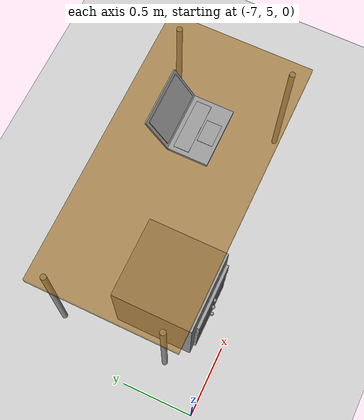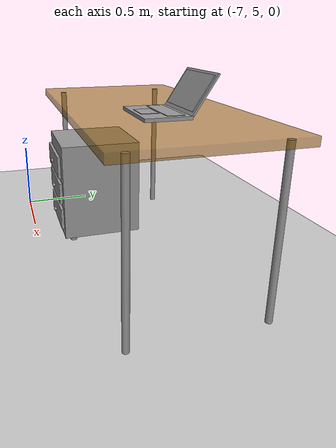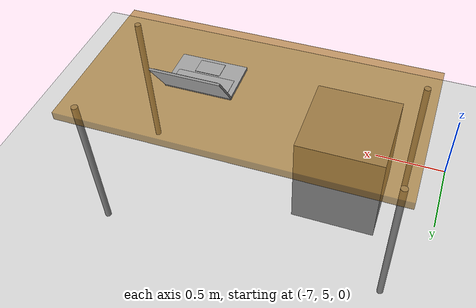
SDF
<sdf version="1.7">
 <world name="default">
  <model name="ground_plane">
   <static>1</static>
   <link name="link">
    <collision name="collision">
     <geometry><plane><normal>0 0 1</normal><size>100 100</size></plane></geometry>
     <surface>
      <contact><collide_bitmask>65535</collide_bitmask></contact>
      <friction><ode><mu>100</mu><mu2>50</mu2></ode></friction>
     </surface>
    </collision>
    <visual name="visual">
     <cast_shadows>0</cast_shadows>
     <geometry><plane><normal>0 0 1</normal><size>100 100</size></plane></geometry>
     <material>
      <script><uri>file://media/materials/scripts/gazebo.material</uri><name>Gazebo/Grey</name></script>
     </material>
    </visual>
   </link>
  </model>
  <model name="my_table_v2">
   <link name="link">
    <inertial>
     <mass>1</mass>
     <inertia>
      <ixx>0.166667</ixx>
      <ixy>0</ixy>
      <ixz>0</ixz>
      <iyy>0.166667</iyy>
      <iyz>0</iyz>
      <izz>0.166667</izz>
     </inertia>
    </inertial>
    <visual name="visual">
     <geometry><box><size>2 1 0.05</size></box></geometry>
     <material>
      <script><name>Gazebo/Grey</name><uri>file://media/materials/scripts/gazebo.material</uri></script>
      <shader type="pixel"><normal_map>__default__</normal_map></shader>
      <ambient>0.6 0.39 0.055 0.6</ambient>
      <diffuse>0.65 0.65 0.65 1</diffuse>
      <specular>0.01 0.01 0.01 1</specular>
      <emissive>0.1 0.1 0.1 1</emissive>
     </material>
     <pose>0 0 1 0 -0 0</pose>
    </visual>
    <collision name="collision">
     <pose>0 0 1 0 -0 0</pose>
     <geometry><box><size>2 1 0.05</size></box></geometry>
     <surface>
      <friction>
       <ode><mu>1</mu><mu2>1</mu2><fdir1>0 0 0</fdir1><slip1>0</slip1><slip2>0</slip2></ode>
       <torsional>
        <coefficient>1</coefficient>
        <patch_radius>0</patch_radius>
        <surface_radius>0</surface_radius>
        <use_patch_radius>1</use_patch_radius>
        <ode><slip>0</slip></ode>
       </torsional>
      </friction>
      <bounce><restitution_coefficient>0</restitution_coefficient><threshold>1e+06</threshold></bounce>
      <contact>
       <collide_without_contact>0</collide_without_contact>
       <collide_without_contact_bitmask>1</collide_without_contact_bitmask>
       <collide_bitmask>1</collide_bitmask>
       <ode>
        <soft_cfm>0</soft_cfm>
        <soft_erp>0.2</soft_erp>
        <kp>1e+13</kp>
        <kd>1</kd>
        <max_vel>0.01</max_vel>
        <min_depth>0</min_depth>
       </ode>
       <bullet>
        <split_impulse>1</split_impulse>
        <split_impulse_penetration_threshold>-0.01</split_impulse_penetration_threshold>
        <soft_cfm>0</soft_cfm>
        <soft_erp>0.2</soft_erp>
        <kp>1e+13</kp>
        <kd>1</kd>
       </bullet>
      </contact>
     </surface>
    </collision>
   </link>
   <link name="link_1">
    <inertial>
     <mass>1</mass>
     <inertia><ixx>0.145833</ixx><ixy>0</ixy><ixz>0</ixz><iyy>0.145833</iyy><iyz>0</iyz><izz>0.125</izz></inertia>
    </inertial>
    <pose>0.928374 -0.393621 0.5 0 -0 0</pose>
    <visual name="visual">
     <geometry><cylinder><radius>0.02</radius><length>1</length></cylinder></geometry>
     <material>
      <lighting>1</lighting>
      <script><uri>file://media/materials/scripts/gazebo.material</uri><name>Gazebo/Grey</name></script>
      <shader type="pixel"><normal_map>__default__</normal_map></shader>
      <ambient>0.5 0.5 0.5 1</ambient>
      <diffuse>0.8 0.8 0.8 1</diffuse>
      <specular>0.01 0.01 0.01 1</specular>
      <emissive>0 0 0 1</emissive>
     </material>
    </visual>
    <collision name="collision">
     <geometry><cylinder><radius>0.02</radius><length>0.75</length></cylinder></geometry>
     <surface>
      <friction>
       <ode><mu>1</mu><mu2>1</mu2><fdir1>0 0 0</fdir1><slip1>0</slip1><slip2>0</slip2></ode>
       <torsional>
        <coefficient>1</coefficient>
        <patch_radius>0</patch_radius>
        <surface_radius>0</surface_radius>
        <use_patch_radius>1</use_patch_radius>
        <ode><slip>0</slip></ode>
       </torsional>
      </friction>
      <bounce><restitution_coefficient>0</restitution_coefficient><threshold>1e+06</threshold></bounce>
      <contact>
       <collide_without_contact>0</collide_without_contact>
       <collide_without_contact_bitmask>1</collide_without_contact_bitmask>
       <collide_bitmask>1</collide_bitmask>
       <ode>
        <soft_cfm>0</soft_cfm>
        <soft_erp>0.2</soft_erp>
        <kp>1e+13</kp>
        <kd>1</kd>
        <max_vel>0.01</max_vel>
        <min_depth>0</min_depth>
       </ode>
       <bullet>
        <split_impulse>1</split_impulse>
        <split_impulse_penetration_threshold>-0.01</split_impulse_penetration_threshold>
        <soft_cfm>0</soft_cfm>
        <soft_erp>0.2</soft_erp>
        <kp>1e+13</kp>
        <kd>1</kd>
       </bullet>
      </contact>
     </surface>
    </collision>
   </link>
   <link name="link_1_clone_1">
    <inertial>
     <mass>1</mass>
     <inertia><ixx>0.145833</ixx><ixy>0</ixy><ixz>0</ixz><iyy>0.145833</iyy><iyz>0</iyz><izz>0.125</izz></inertia>
    </inertial>
    <pose>-0.927679 -0.365385 0.5 0 -0 0</pose>
    <visual name="visual">
     <geometry><cylinder><radius>0.02</radius><length>1</length></cylinder></geometry>
     <material>
      <lighting>1</lighting>
      <script><uri>file://media/materials/scripts/gazebo.material</uri><name>Gazebo/Grey</name></script>
      <shader type="pixel"><normal_map>__default__</normal_map></shader>
      <ambient>0.5 0.5 0.5 1</ambient>
      <diffuse>0.8 0.8 0.8 1</diffuse>
      <specular>0.01 0.01 0.01 1</specular>
      <emissive>0 0 0 1</emissive>
     </material>
    </visual>
    <collision name="collision">
     <geometry><cylinder><radius>0.02</radius><length>0.75</length></cylinder></geometry>
     <surface>
      <friction>
       <ode><mu>1</mu><mu2>1</mu2><fdir1>0 0 0</fdir1><slip1>0</slip1><slip2>0</slip2></ode>
       <torsional>
        <coefficient>1</coefficient>
        <patch_radius>0</patch_radius>
        <surface_radius>0</surface_radius>
        <use_patch_radius>1</use_patch_radius>
        <ode><slip>0</slip></ode>
       </torsional>
      </friction>
      <bounce><restitution_coefficient>0</restitution_coefficient><threshold>1e+06</threshold></bounce>
      <contact>
       <collide_without_contact>0</collide_without_contact>
       <collide_without_contact_bitmask>1</collide_without_contact_bitmask>
       <collide_bitmask>1</collide_bitmask>
       <ode>
        <soft_cfm>0</soft_cfm>
        <soft_erp>0.2</soft_erp>
        <kp>1e+13</kp>
        <kd>1</kd>
        <max_vel>0.01</max_vel>
        <min_depth>0</min_depth>
       </ode>
       <bullet>
        <split_impulse>1</split_impulse>
        <split_impulse_penetration_threshold>-0.01</split_impulse_penetration_threshold>
        <soft_cfm>0</soft_cfm>
        <soft_erp>0.2</soft_erp>
        <kp>1e+13</kp>
        <kd>1</kd>
       </bullet>
      </contact>
     </surface>
    </collision>
   </link>
   <link name="link_1_clone_1_clone">
    <inertial>
     <mass>1</mass>
     <inertia><ixx>0.145833</ixx><ixy>0</ixy><ixz>0</ixz><iyy>0.145833</iyy><iyz>0</iyz><izz>0.125</izz></inertia>
    </inertial>
    <pose>-0.933002 0.405987 0.5 0 -0 0</pose>
    <visual name="visual">
     <geometry><cylinder><radius>0.02</radius><length>1</length></cylinder></geometry>
     <material>
      <lighting>1</lighting>
      <script><uri>file://media/materials/scripts/gazebo.material</uri><name>Gazebo/Grey</name></script>
      <shader type="pixel"><normal_map>__default__</normal_map></shader>
      <ambient>0.5 0.5 0.5 1</ambient>
      <diffuse>0.8 0.8 0.8 1</diffuse>
      <specular>0.01 0.01 0.01 1</specular>
      <emissive>0 0 0 1</emissive>
     </material>
    </visual>
    <collision name="collision">
     <geometry><cylinder><radius>0.02</radius><length>0.75</length></cylinder></geometry>
     <surface>
      <friction>
       <ode><mu>1</mu><mu2>1</mu2><fdir1>0 0 0</fdir1><slip1>0</slip1><slip2>0</slip2></ode>
       <torsional>
        <coefficient>1</coefficient>
        <patch_radius>0</patch_radius>
        <surface_radius>0</surface_radius>
        <use_patch_radius>1</use_patch_radius>
        <ode><slip>0</slip></ode>
       </torsional>
      </friction>
      <bounce><restitution_coefficient>0</restitution_coefficient><threshold>1e+06</threshold></bounce>
      <contact>
       <collide_without_contact>0</collide_without_contact>
       <collide_without_contact_bitmask>1</collide_without_contact_bitmask>
       <collide_bitmask>1</collide_bitmask>
       <ode>
        <soft_cfm>0</soft_cfm>
        <soft_erp>0.2</soft_erp>
        <kp>1e+13</kp>
        <kd>1</kd>
        <max_vel>0.01</max_vel>
        <min_depth>0</min_depth>
       </ode>
       <bullet>
        <split_impulse>1</split_impulse>
        <split_impulse_penetration_threshold>-0.01</split_impulse_penetration_threshold>
        <soft_cfm>0</soft_cfm>
        <soft_erp>0.2</soft_erp>
        <kp>1e+13</kp>
        <kd>1</kd>
       </bullet>
      </contact>
     </surface>
    </collision>
   </link>
   <link name="link_1_clone_1_clone_0">
    <inertial>
     <mass>1</mass>
     <inertia><ixx>0.145833</ixx><ixy>0</ixy><ixz>0</ixz><iyy>0.145833</iyy><iyz>0</iyz><izz>0.125</izz></inertia>
    </inertial>
    <pose>0.924345 0.40229 0.5 0 -0 0</pose>
    <visual name="visual">
     <geometry><cylinder><radius>0.02</radius><length>1</length></cylinder></geometry>
     <material>
      <lighting>1</lighting>
      <script><uri>file://media/materials/scripts/gazebo.material</uri><name>Gazebo/Grey</name></script>
      <shader type="pixel"><normal_map>__default__</normal_map></shader>
      <ambient>0.5 0.5 0.5 1</ambient>
      <diffuse>0.8 0.8 0.8 1</diffuse>
      <specular>0.01 0.01 0.01 1</specular>
      <emissive>0 0 0 1</emissive>
     </material>
    </visual>
    <collision name="collision">
     <geometry><cylinder><radius>0.02</radius><length>0.75</length></cylinder></geometry>
     <surface>
      <friction>
       <ode><mu>1</mu><mu2>1</mu2><fdir1>0 0 0</fdir1><slip1>0</slip1><slip2>0</slip2></ode>
       <torsional>
        <coefficient>1</coefficient>
        <patch_radius>0</patch_radius>
        <surface_radius>0</surface_radius>
        <use_patch_radius>1</use_patch_radius>
        <ode><slip>0</slip></ode>
       </torsional>
      </friction>
      <bounce><restitution_coefficient>0</restitution_coefficient><threshold>1e+06</threshold></bounce>
      <contact>
       <collide_without_contact>0</collide_without_contact>
       <collide_without_contact_bitmask>1</collide_without_contact_bitmask>
       <collide_bitmask>1</collide_bitmask>
       <ode>
        <soft_cfm>0</soft_cfm>
        <soft_erp>0.2</soft_erp>
        <kp>1e+13</kp>
        <kd>1</kd>
        <max_vel>0.01</max_vel>
        <min_depth>0</min_depth>
       </ode>
       <bullet>
        <split_impulse>1</split_impulse>
        <split_impulse_penetration_threshold>-0.01</split_impulse_penetration_threshold>
        <soft_cfm>0</soft_cfm>
        <soft_erp>0.2</soft_erp>
        <kp>1e+13</kp>
        <kd>1</kd>
       </bullet>
      </contact>
     </surface>
    </collision>
   </link>
   <static>1</static>
   <pose>-5.82161 5.67835 0 0 -0 0</pose>
  </model>
  <model name="my_drawer_v2">
   <link name="link">
    <inertial>
     <mass>1</mass>
     <inertia>
      <ixx>0.166667</ixx>
      <ixy>0</ixy>
      <ixz>0</ixz>
      <iyy>0.166667</iyy>
      <iyz>0</iyz>
      <izz>0.166667</izz>
     </inertia>
    </inertial>
    <pose>0 0 0.116299 0 -0 0</pose>
    <visual name="visual">
     <geometry><box><size>0.55 0.55 0.675</size></box></geometry>
     <material>
      <script><name>Gazebo/Grey</name><uri>file://media/materials/scripts/gazebo.material</uri></script>
      <shader type="pixel"><normal_map>__default__</normal_map></shader>
      <ambient>0.9 0.9 0.9 1</ambient>
      <diffuse>0.9 0.9 0.9 1</diffuse>
      <specular>0.01 0.01 0.01 1</specular>
      <emissive>0 0 0 1</emissive>
     </material>
     <pose>0 0 0.27 0 -0 0</pose>
    </visual>
    <collision name="collision">
     <pose>0 0 0.27 0 -0 0</pose>
     <geometry><box><size>0.55 0.55 0.675</size></box></geometry>
     <surface>
      <friction>
       <ode><mu>1</mu><mu2>1</mu2><fdir1>0 0 0</fdir1><slip1>0</slip1><slip2>0</slip2></ode>
       <torsional>
        <coefficient>1</coefficient>
        <patch_radius>0</patch_radius>
        <surface_radius>0</surface_radius>
        <use_patch_radius>1</use_patch_radius>
        <ode><slip>0</slip></ode>
       </torsional>
      </friction>
      <bounce><restitution_coefficient>0</restitution_coefficient><threshold>1e+06</threshold></bounce>
      <contact>
       <collide_without_contact>0</collide_without_contact>
       <collide_without_contact_bitmask>1</collide_without_contact_bitmask>
       <collide_bitmask>1</collide_bitmask>
       <ode>
        <soft_cfm>0</soft_cfm>
        <soft_erp>0.2</soft_erp>
        <kp>1e+13</kp>
        <kd>1</kd>
        <max_vel>0.01</max_vel>
        <min_depth>0</min_depth>
       </ode>
       <bullet>
        <split_impulse>1</split_impulse>
        <split_impulse_penetration_threshold>-0.01</split_impulse_penetration_threshold>
        <soft_cfm>0</soft_cfm>
        <soft_erp>0.2</soft_erp>
        <kp>1e+13</kp>
        <kd>1</kd>
       </bullet>
      </contact>
     </surface>
    </collision>
   </link>
   <link name="link_0">
    <inertial>
     <mass>1</mass>
     <inertia><ixx>0.145833</ixx><ixy>0</ixy><ixz>0</ixz><iyy>0.145833</iyy><iyz>0</iyz><izz>0.125</izz></inertia>
    </inertial>
    <pose>0.2095 -0.203821 0.302524 0 -0 0</pose>
    <visual name="visual">
     <pose>0 0 -0.275 0 -0 0</pose>
     <geometry><cylinder><radius>0.025</radius><length>0.05</length></cylinder></geometry>
     <material>
      <lighting>1</lighting>
      <script><uri>file://media/materials/scripts/gazebo.material</uri><name>Gazebo/Grey</name></script>
      <shader type="pixel"><normal_map>__default__</normal_map></shader>
      <ambient>0.7 0.7 0.7 1</ambient>
      <diffuse>0.7 0.7 0.7 1</diffuse>
      <specular>0.01 0.01 0.01 1</specular>
      <emissive>0 0 0 1</emissive>
     </material>
    </visual>
    <collision name="collision">
     <pose>0 0 -0.275 0 -0 0</pose>
     <geometry><cylinder><radius>0.025</radius><length>0.05</length></cylinder></geometry>
     <surface>
      <friction>
       <ode><mu>1</mu><mu2>1</mu2><fdir1>0 0 0</fdir1><slip1>0</slip1><slip2>0</slip2></ode>
       <torsional>
        <coefficient>1</coefficient>
        <patch_radius>0</patch_radius>
        <surface_radius>0</surface_radius>
        <use_patch_radius>1</use_patch_radius>
        <ode><slip>0</slip></ode>
       </torsional>
      </friction>
      <bounce><restitution_coefficient>0</restitution_coefficient><threshold>1e+06</threshold></bounce>
      <contact>
       <collide_without_contact>0</collide_without_contact>
       <collide_without_contact_bitmask>1</collide_without_contact_bitmask>
       <collide_bitmask>1</collide_bitmask>
       <ode>
        <soft_cfm>0</soft_cfm>
        <soft_erp>0.2</soft_erp>
        <kp>1e+13</kp>
        <kd>1</kd>
        <max_vel>0.01</max_vel>
        <min_depth>0</min_depth>
       </ode>
       <bullet>
        <split_impulse>1</split_impulse>
        <split_impulse_penetration_threshold>-0.01</split_impulse_penetration_threshold>
        <soft_cfm>0</soft_cfm>
        <soft_erp>0.2</soft_erp>
        <kp>1e+13</kp>
        <kd>1</kd>
       </bullet>
      </contact>
     </surface>
    </collision>
   </link>
   <link name="link_0_0_clone">
    <inertial>
     <mass>1</mass>
     <inertia>
      <ixx>0.166667</ixx>
      <ixy>0</ixy>
      <ixz>0</ixz>
      <iyy>0.166667</iyy>
      <iyz>0</iyz>
      <izz>0.166667</izz>
     </inertia>
    </inertial>
    <pose>-0.003378 0.283932 0.180993 0 -0 0</pose>
    <visual name="visual">
     <geometry><box><size>0.45 0.02 0.15</size></box></geometry>
     <material>
      <lighting>1</lighting>
      <script><uri>file://media/materials/scripts/gazebo.material</uri><name>Gazebo/Grey</name></script>
      <shader type="pixel"><normal_map>__default__</normal_map></shader>
      <ambient>0.9 0.9 0.9 1</ambient>
      <diffuse>0.9 0.9 0.9 1</diffuse>
      <specular>0.01 0.01 0.01 1</specular>
      <emissive>0 0 0 1</emissive>
     </material>
    </visual>
    <collision name="collision">
     <geometry><box><size>0.45 0.02 0.15</size></box></geometry>
     <surface>
      <friction>
       <ode><mu>1</mu><mu2>1</mu2><fdir1>0 0 0</fdir1><slip1>0</slip1><slip2>0</slip2></ode>
       <torsional>
        <coefficient>1</coefficient>
        <patch_radius>0</patch_radius>
        <surface_radius>0</surface_radius>
        <use_patch_radius>1</use_patch_radius>
        <ode><slip>0</slip></ode>
       </torsional>
      </friction>
      <bounce><restitution_coefficient>0</restitution_coefficient><threshold>1e+06</threshold></bounce>
      <contact>
       <collide_without_contact>0</collide_without_contact>
       <collide_without_contact_bitmask>1</collide_without_contact_bitmask>
       <collide_bitmask>1</collide_bitmask>
       <ode>
        <soft_cfm>0</soft_cfm>
        <soft_erp>0.2</soft_erp>
        <kp>1e+13</kp>
        <kd>1</kd>
        <max_vel>0.01</max_vel>
        <min_depth>0</min_depth>
       </ode>
       <bullet>
        <split_impulse>1</split_impulse>
        <split_impulse_penetration_threshold>-0.01</split_impulse_penetration_threshold>
        <soft_cfm>0</soft_cfm>
        <soft_erp>0.2</soft_erp>
        <kp>1e+13</kp>
        <kd>1</kd>
       </bullet>
      </contact>
     </surface>
    </collision>
   </link>
   <link name="link_0_0_clone_clone">
    <inertial>
     <mass>1</mass>
     <inertia>
      <ixx>0.166667</ixx>
      <ixy>0</ixy>
      <ixz>0</ixz>
      <iyy>0.166667</iyy>
      <iyz>0</iyz>
      <izz>0.166667</izz>
     </inertia>
    </inertial>
    <pose>-0.004239 0.28732 0.377607 0 -0 0</pose>
    <visual name="visual">
     <geometry><box><size>0.45 0.02 0.15</size></box></geometry>
     <material>
      <lighting>1</lighting>
      <script><uri>file://media/materials/scripts/gazebo.material</uri><name>Gazebo/Grey</name></script>
      <shader type="pixel"><normal_map>__default__</normal_map></shader>
      <ambient>0.9 0.9 0.9 1</ambient>
      <diffuse>0.9 0.9 0.9 1</diffuse>
      <specular>0.01 0.01 0.01 1</specular>
      <emissive>0 0 0 1</emissive>
     </material>
    </visual>
    <collision name="collision">
     <geometry><box><size>0.45 0.02 0.15</size></box></geometry>
     <surface>
      <friction>
       <ode><mu>1</mu><mu2>1</mu2><fdir1>0 0 0</fdir1><slip1>0</slip1><slip2>0</slip2></ode>
       <torsional>
        <coefficient>1</coefficient>
        <patch_radius>0</patch_radius>
        <surface_radius>0</surface_radius>
        <use_patch_radius>1</use_patch_radius>
        <ode><slip>0</slip></ode>
       </torsional>
      </friction>
      <bounce><restitution_coefficient>0</restitution_coefficient><threshold>1e+06</threshold></bounce>
      <contact>
       <collide_without_contact>0</collide_without_contact>
       <collide_without_contact_bitmask>1</collide_without_contact_bitmask>
       <collide_bitmask>1</collide_bitmask>
       <ode>
        <soft_cfm>0</soft_cfm>
        <soft_erp>0.2</soft_erp>
        <kp>1e+13</kp>
        <kd>1</kd>
        <max_vel>0.01</max_vel>
        <min_depth>0</min_depth>
       </ode>
       <bullet>
        <split_impulse>1</split_impulse>
        <split_impulse_penetration_threshold>-0.01</split_impulse_penetration_threshold>
        <soft_cfm>0</soft_cfm>
        <soft_erp>0.2</soft_erp>
        <kp>1e+13</kp>
        <kd>1</kd>
       </bullet>
      </contact>
     </surface>
    </collision>
   </link>
   <link name="link_0_0_clone_clone_clone">
    <inertial>
     <mass>1</mass>
     <inertia>
      <ixx>0.166667</ixx>
      <ixy>0</ixy>
      <ixz>0</ixz>
      <iyy>0.166667</iyy>
      <iyz>0</iyz>
      <izz>0.166667</izz>
     </inertia>
    </inertial>
    <pose>-0.005805 0.292346 0.569265 0 0 -3.13872</pose>
    <visual name="visual">
     <geometry><box><size>0.45 0.02 0.15</size></box></geometry>
     <material>
      <lighting>1</lighting>
      <script><uri>file://media/materials/scripts/gazebo.material</uri><name>Gazebo/Grey</name></script>
      <shader type="pixel"><normal_map>__default__</normal_map></shader>
      <ambient>0.9 0.9 0.9 1</ambient>
      <diffuse>0.9 0.9 0.9 1</diffuse>
      <specular>0.01 0.01 0.01 1</specular>
      <emissive>0 0 0 1</emissive>
     </material>
    </visual>
    <collision name="collision">
     <geometry><box><size>0.45 0.02 0.15</size></box></geometry>
     <surface>
      <friction>
       <ode><mu>1</mu><mu2>1</mu2><fdir1>0 0 0</fdir1><slip1>0</slip1><slip2>0</slip2></ode>
       <torsional>
        <coefficient>1</coefficient>
        <patch_radius>0</patch_radius>
        <surface_radius>0</surface_radius>
        <use_patch_radius>1</use_patch_radius>
        <ode><slip>0</slip></ode>
       </torsional>
      </friction>
      <bounce><restitution_coefficient>0</restitution_coefficient><threshold>1e+06</threshold></bounce>
      <contact>
       <collide_without_contact>0</collide_without_contact>
       <collide_without_contact_bitmask>1</collide_without_contact_bitmask>
       <collide_bitmask>1</collide_bitmask>
       <ode>
        <soft_cfm>0</soft_cfm>
        <soft_erp>0.2</soft_erp>
        <kp>1e+13</kp>
        <kd>1</kd>
        <max_vel>0.01</max_vel>
        <min_depth>0</min_depth>
       </ode>
       <bullet>
        <split_impulse>1</split_impulse>
        <split_impulse_penetration_threshold>-0.01</split_impulse_penetration_threshold>
        <soft_cfm>0</soft_cfm>
        <soft_erp>0.2</soft_erp>
        <kp>1e+13</kp>
        <kd>1</kd>
       </bullet>
      </contact>
     </surface>
    </collision>
   </link>
   <link name="link_0_clone">
    <inertial>
     <mass>1</mass>
     <inertia><ixx>0.145833</ixx><ixy>0</ixy><ixz>0</ixz><iyy>0.145833</iyy><iyz>0</iyz><izz>0.125</izz></inertia>
    </inertial>
    <pose>-0.20661 -0.201979 0.303229 0 -0 0</pose>
    <visual name="visual">
     <pose>0 0 -0.275 0 -0 0</pose>
     <geometry><cylinder><radius>0.025</radius><length>0.05</length></cylinder></geometry>
     <material>
      <lighting>1</lighting>
      <script><uri>file://media/materials/scripts/gazebo.material</uri><name>Gazebo/Grey</name></script>
      <shader type="pixel"><normal_map>__default__</normal_map></shader>
      <ambient>0.8 0.8 0.8 1</ambient>
      <diffuse>0.8 0.8 0.8 1</diffuse>
      <specular>0.01 0.01 0.01 1</specular>
      <emissive>0 0 0 1</emissive>
     </material>
    </visual>
    <collision name="collision">
     <pose>0 0 -0.275 0 -0 0</pose>
     <geometry><cylinder><radius>0.025</radius><length>0.05</length></cylinder></geometry>
     <surface>
      <friction>
       <ode><mu>1</mu><mu2>1</mu2><fdir1>0 0 0</fdir1><slip1>0</slip1><slip2>0</slip2></ode>
       <torsional>
        <coefficient>1</coefficient>
        <patch_radius>0</patch_radius>
        <surface_radius>0</surface_radius>
        <use_patch_radius>1</use_patch_radius>
        <ode><slip>0</slip></ode>
       </torsional>
      </friction>
      <bounce><restitution_coefficient>0</restitution_coefficient><threshold>1e+06</threshold></bounce>
      <contact>
       <collide_without_contact>0</collide_without_contact>
       <collide_without_contact_bitmask>1</collide_without_contact_bitmask>
       <collide_bitmask>1</collide_bitmask>
       <ode>
        <soft_cfm>0</soft_cfm>
        <soft_erp>0.2</soft_erp>
        <kp>1e+13</kp>
        <kd>1</kd>
        <max_vel>0.01</max_vel>
        <min_depth>0</min_depth>
       </ode>
       <bullet>
        <split_impulse>1</split_impulse>
        <split_impulse_penetration_threshold>-0.01</split_impulse_penetration_threshold>
        <soft_cfm>0</soft_cfm>
        <soft_erp>0.2</soft_erp>
        <kp>1e+13</kp>
        <kd>1</kd>
       </bullet>
      </contact>
     </surface>
    </collision>
   </link>
   <link name="link_0_clone_0">
    <inertial>
     <mass>1</mass>
     <inertia><ixx>0.145833</ixx><ixy>0</ixy><ixz>0</ixz><iyy>0.145833</iyy><iyz>0</iyz><izz>0.125</izz></inertia>
    </inertial>
    <pose>0.205481 0.211972 0.302524 0 -0 0</pose>
    <visual name="visual">
     <pose>0 0 -0.275 0 -0 0</pose>
     <geometry><cylinder><radius>0.025</radius><length>0.05</length></cylinder></geometry>
     <material>
      <lighting>1</lighting>
      <script><uri>file://media/materials/scripts/gazebo.material</uri><name>Gazebo/Grey</name></script>
      <shader type="pixel"><normal_map>__default__</normal_map></shader>
      <ambient>0.7 0.7 0.7 1</ambient>
      <diffuse>0.7 0.7 0.7 1</diffuse>
      <specular>0.01 0.01 0.01 1</specular>
      <emissive>0 0 0 1</emissive>
     </material>
    </visual>
    <collision name="collision">
     <pose>0 0 -0.275 0 -0 0</pose>
     <geometry><cylinder><radius>0.025</radius><length>0.05</length></cylinder></geometry>
     <surface>
      <friction>
       <ode><mu>1</mu><mu2>1</mu2><fdir1>0 0 0</fdir1><slip1>0</slip1><slip2>0</slip2></ode>
       <torsional>
        <coefficient>1</coefficient>
        <patch_radius>0</patch_radius>
        <surface_radius>0</surface_radius>
        <use_patch_radius>1</use_patch_radius>
        <ode><slip>0</slip></ode>
       </torsional>
      </friction>
      <bounce><restitution_coefficient>0</restitution_coefficient><threshold>1e+06</threshold></bounce>
      <contact>
       <collide_without_contact>0</collide_without_contact>
       <collide_without_contact_bitmask>1</collide_without_contact_bitmask>
       <collide_bitmask>1</collide_bitmask>
       <ode>
        <soft_cfm>0</soft_cfm>
        <soft_erp>0.2</soft_erp>
        <kp>1e+13</kp>
        <kd>1</kd>
        <max_vel>0.01</max_vel>
        <min_depth>0</min_depth>
       </ode>
       <bullet>
        <split_impulse>1</split_impulse>
        <split_impulse_penetration_threshold>-0.01</split_impulse_penetration_threshold>
        <soft_cfm>0</soft_cfm>
        <soft_erp>0.2</soft_erp>
        <kp>1e+13</kp>
        <kd>1</kd>
       </bullet>
      </contact>
     </surface>
    </collision>
   </link>
   <link name="link_0_clone_0_clone">
    <inertial>
     <mass>1</mass>
     <inertia><ixx>0.145833</ixx><ixy>0</ixy><ixz>0</ixz><iyy>0.145833</iyy><iyz>0</iyz><izz>0.125</izz></inertia>
    </inertial>
    <pose>-0.197514 0.204937 0.302524 0 -0 0</pose>
    <visual name="visual">
     <pose>0 0 -0.275 0 -0 0</pose>
     <geometry><cylinder><radius>0.025</radius><length>0.05</length></cylinder></geometry>
     <material>
      <lighting>1</lighting>
      <script><uri>file://media/materials/scripts/gazebo.material</uri><name>Gazebo/Grey</name></script>
      <shader type="pixel"><normal_map>__default__</normal_map></shader>
      <ambient>0.7 0.7 0.7 1</ambient>
      <diffuse>0.7 0.7 0.7 1</diffuse>
      <specular>0.01 0.01 0.01 1</specular>
      <emissive>0 0 0 1</emissive>
     </material>
    </visual>
    <collision name="collision">
     <pose>0 0 -0.275 0 -0 0</pose>
     <geometry><cylinder><radius>0.025</radius><length>0.05</length></cylinder></geometry>
     <surface>
      <friction>
       <ode><mu>1</mu><mu2>1</mu2><fdir1>0 0 0</fdir1><slip1>0</slip1><slip2>0</slip2></ode>
       <torsional>
        <coefficient>1</coefficient>
        <patch_radius>0</patch_radius>
        <surface_radius>0</surface_radius>
        <use_patch_radius>1</use_patch_radius>
        <ode><slip>0</slip></ode>
       </torsional>
      </friction>
      <bounce><restitution_coefficient>0</restitution_coefficient><threshold>1e+06</threshold></bounce>
      <contact>
       <collide_without_contact>0</collide_without_contact>
       <collide_without_contact_bitmask>1</collide_without_contact_bitmask>
       <collide_bitmask>1</collide_bitmask>
       <ode>
        <soft_cfm>0</soft_cfm>
        <soft_erp>0.2</soft_erp>
        <kp>1e+13</kp>
        <kd>1</kd>
        <max_vel>0.01</max_vel>
        <min_depth>0</min_depth>
       </ode>
       <bullet>
        <split_impulse>1</split_impulse>
        <split_impulse_penetration_threshold>-0.01</split_impulse_penetration_threshold>
        <soft_cfm>0</soft_cfm>
        <soft_erp>0.2</soft_erp>
        <kp>1e+13</kp>
        <kd>1</kd>
       </bullet>
      </contact>
     </surface>
    </collision>
   </link>
   <link name="link_1">
    <inertial>
     <mass>1</mass>
     <inertia><ixx>0.1</ixx><ixy>0</ixy><ixz>0</ixz><iyy>0.1</iyy><iyz>0</iyz><izz>0.1</izz></inertia>
    </inertial>
    <pose>-0.007427 0.306598 0.372378 0 -0 0</pose>
    <visual name="visual">
     <geometry><sphere><radius>0.013</radius></sphere></geometry>
     <material>
      <lighting>1</lighting>
      <script><uri>file://media/materials/scripts/gazebo.material</uri><name>Gazebo/Grey</name></script>
      <shader type="pixel"><normal_map>__default__</normal_map></shader>
      <ambient>0.2 0.2 0.2 1</ambient>
      <diffuse>0.3 0.3 0.3 1</diffuse>
      <specular>0.01 0.01 0.01 1</specular>
      <emissive>0 0 0 1</emissive>
     </material>
    </visual>
    <collision name="collision">
     <geometry><sphere><radius>0.013</radius></sphere></geometry>
     <surface>
      <friction>
       <ode><mu>1</mu><mu2>1</mu2><fdir1>0 0 0</fdir1><slip1>0</slip1><slip2>0</slip2></ode>
       <torsional>
        <coefficient>1</coefficient>
        <patch_radius>0</patch_radius>
        <surface_radius>0</surface_radius>
        <use_patch_radius>1</use_patch_radius>
        <ode><slip>0</slip></ode>
       </torsional>
      </friction>
      <bounce><restitution_coefficient>0</restitution_coefficient><threshold>1e+06</threshold></bounce>
      <contact>
       <collide_without_contact>0</collide_without_contact>
       <collide_without_contact_bitmask>1</collide_without_contact_bitmask>
       <collide_bitmask>1</collide_bitmask>
       <ode>
        <soft_cfm>0</soft_cfm>
        <soft_erp>0.2</soft_erp>
        <kp>1e+13</kp>
        <kd>1</kd>
        <max_vel>0.01</max_vel>
        <min_depth>0</min_depth>
       </ode>
       <bullet>
        <split_impulse>1</split_impulse>
        <split_impulse_penetration_threshold>-0.01</split_impulse_penetration_threshold>
        <soft_cfm>0</soft_cfm>
        <soft_erp>0.2</soft_erp>
        <kp>1e+13</kp>
        <kd>1</kd>
       </bullet>
      </contact>
     </surface>
    </collision>
   </link>
   <link name="link_1_clone">
    <inertial>
     <mass>1</mass>
     <inertia><ixx>0.1</ixx><ixy>0</ixy><ixz>0</ixz><iyy>0.1</iyy><iyz>0</iyz><izz>0.1</izz></inertia>
    </inertial>
    <pose>-0.007411 0.306159 0.179254 0 -0 0</pose>
    <visual name="visual">
     <geometry><sphere><radius>0.013</radius></sphere></geometry>
     <material>
      <lighting>1</lighting>
      <script><uri>file://media/materials/scripts/gazebo.material</uri><name>Gazebo/Grey</name></script>
      <shader type="pixel"><normal_map>__default__</normal_map></shader>
      <ambient>0.2 0.2 0.2 1</ambient>
      <diffuse>0.3 0.3 0.3 1</diffuse>
      <specular>0.01 0.01 0.01 1</specular>
      <emissive>0 0 0 1</emissive>
     </material>
    </visual>
    <collision name="collision">
     <geometry><sphere><radius>0.013</radius></sphere></geometry>
     <surface>
      <friction>
       <ode><mu>1</mu><mu2>1</mu2><fdir1>0 0 0</fdir1><slip1>0</slip1><slip2>0</slip2></ode>
       <torsional>
        <coefficient>1</coefficient>
        <patch_radius>0</patch_radius>
        <surface_radius>0</surface_radius>
        <use_patch_radius>1</use_patch_radius>
        <ode><slip>0</slip></ode>
       </torsional>
      </friction>
      <bounce><restitution_coefficient>0</restitution_coefficient><threshold>1e+06</threshold></bounce>
      <contact>
       <collide_without_contact>0</collide_without_contact>
       <collide_without_contact_bitmask>1</collide_without_contact_bitmask>
       <collide_bitmask>1</collide_bitmask>
       <ode>
        <soft_cfm>0</soft_cfm>
        <soft_erp>0.2</soft_erp>
        <kp>1e+13</kp>
        <kd>1</kd>
        <max_vel>0.01</max_vel>
        <min_depth>0</min_depth>
       </ode>
       <bullet>
        <split_impulse>1</split_impulse>
        <split_impulse_penetration_threshold>-0.01</split_impulse_penetration_threshold>
        <soft_cfm>0</soft_cfm>
        <soft_erp>0.2</soft_erp>
        <kp>1e+13</kp>
        <kd>1</kd>
       </bullet>
      </contact>
     </surface>
    </collision>
   </link>
   <link name="link_1_clone_clone">
    <inertial>
     <mass>1</mass>
     <inertia><ixx>0.1</ixx><ixy>0</ixy><ixz>0</ixz><iyy>0.1</iyy><iyz>0</iyz><izz>0.1</izz></inertia>
    </inertial>
    <pose>-0.006412 0.30676 0.563852 0 0 -3.13872</pose>
    <visual name="visual">
     <geometry><sphere><radius>0.013</radius></sphere></geometry>
     <material>
      <lighting>1</lighting>
      <script><uri>file://media/materials/scripts/gazebo.material</uri><name>Gazebo/Grey</name></script>
      <shader type="pixel"><normal_map>__default__</normal_map></shader>
      <ambient>0.2 0.2 0.2 1</ambient>
      <diffuse>0.3 0.3 0.3 1</diffuse>
      <specular>0.01 0.01 0.01 1</specular>
      <emissive>0 0 0 1</emissive>
     </material>
    </visual>
    <collision name="collision">
     <geometry><sphere><radius>0.013</radius></sphere></geometry>
     <surface>
      <friction>
       <ode><mu>1</mu><mu2>1</mu2><fdir1>0 0 0</fdir1><slip1>0</slip1><slip2>0</slip2></ode>
       <torsional>
        <coefficient>1</coefficient>
        <patch_radius>0</patch_radius>
        <surface_radius>0</surface_radius>
        <use_patch_radius>1</use_patch_radius>
        <ode><slip>0</slip></ode>
       </torsional>
      </friction>
      <bounce><restitution_coefficient>0</restitution_coefficient><threshold>1e+06</threshold></bounce>
      <contact>
       <collide_without_contact>0</collide_without_contact>
       <collide_without_contact_bitmask>1</collide_without_contact_bitmask>
       <collide_bitmask>1</collide_bitmask>
       <ode>
        <soft_cfm>0</soft_cfm>
        <soft_erp>0.2</soft_erp>
        <kp>1e+13</kp>
        <kd>1</kd>
        <max_vel>0.01</max_vel>
        <min_depth>0</min_depth>
       </ode>
       <bullet>
        <split_impulse>1</split_impulse>
        <split_impulse_penetration_threshold>-0.01</split_impulse_penetration_threshold>
        <soft_cfm>0</soft_cfm>
        <soft_erp>0.2</soft_erp>
        <kp>1e+13</kp>
        <kd>1</kd>
       </bullet>
      </contact>
     </surface>
    </collision>
   </link>
   <static>1</static>
   <pose>-6.35314 5.4569 0 0 -0 3.14149</pose>
  </model>
  <model name="my_pc">
   <link name="link">
    <inertial>
     <mass>1</mass>
     <inertia>
      <ixx>0.166667</ixx>
      <ixy>0</ixy>
      <ixz>0</ixz>
      <iyy>0.166667</iyy>
      <iyz>0</iyz>
      <izz>0.166667</izz>
     </inertia>
    </inertial>
    <gravity>0</gravity>
    <visual name="visual">
     <geometry><box><size>0.4 0.27 0.02</size></box></geometry>
     <material>
      <script><name>Gazebo/Grey</name><uri>file://media/materials/scripts/gazebo.material</uri></script>
      <shader type="pixel"><normal_map>__default__</normal_map></shader>
      <ambient>0.6 0.6 0.6 0</ambient>
      <diffuse>0.6 0.6 0.6 1</diffuse>
      <specular>0.01 0.01 0.01 1</specular>
      <emissive>0 0 0 1</emissive>
     </material>
     <pose>0 0 1.035 0 -0 0</pose>
    </visual>
    <collision name="collision">
     <pose>0 0 1.035 0 -0 0</pose>
     <geometry><box><size>0.4 0.27 0.02</size></box></geometry>
     <surface>
      <friction>
       <ode><mu>1</mu><mu2>1</mu2><fdir1>0 0 0</fdir1><slip1>0</slip1><slip2>0</slip2></ode>
       <torsional>
        <coefficient>1</coefficient>
        <patch_radius>0</patch_radius>
        <surface_radius>0</surface_radius>
        <use_patch_radius>1</use_patch_radius>
        <ode><slip>0</slip></ode>
       </torsional>
      </friction>
      <bounce><restitution_coefficient>0</restitution_coefficient><threshold>1e+06</threshold></bounce>
      <contact>
       <collide_without_contact>0</collide_without_contact>
       <collide_without_contact_bitmask>1</collide_without_contact_bitmask>
       <collide_bitmask>1</collide_bitmask>
       <ode>
        <soft_cfm>0</soft_cfm>
        <soft_erp>0.2</soft_erp>
        <kp>1e+13</kp>
        <kd>1</kd>
        <max_vel>0.01</max_vel>
        <min_depth>0</min_depth>
       </ode>
       <bullet>
        <split_impulse>1</split_impulse>
        <split_impulse_penetration_threshold>-0.01</split_impulse_penetration_threshold>
        <soft_cfm>0</soft_cfm>
        <soft_erp>0.2</soft_erp>
        <kp>1e+13</kp>
        <kd>1</kd>
       </bullet>
      </contact>
     </surface>
    </collision>
   </link>
   <link name="link_clone">
    <inertial>
     <mass>1</mass>
     <inertia>
      <ixx>0.166667</ixx>
      <ixy>0</ixy>
      <ixz>0</ixz>
      <iyy>0.166667</iyy>
      <iyz>0</iyz>
      <izz>0.166667</izz>
     </inertia>
    </inertial>
    <pose>-0.00057 0.199611 0.109573 0 -0 0</pose>
    <visual name="visual">
     <geometry><box><size>0.4 0.27 0.012</size></box></geometry>
     <material>
      <script><name>Gazebo/Grey</name><uri>file://media/materials/scripts/gazebo.material</uri></script>
      <shader type="pixel"><normal_map>__default__</normal_map></shader>
      <ambient>0.6 0.6 0.6 0</ambient>
      <diffuse>0.6 0.6 0.6 1</diffuse>
      <specular>0.01 0.01 0.01 1</specular>
      <emissive>0 0 0 1</emissive>
     </material>
     <pose>0 0 1.035 1 -0 0</pose>
    </visual>
    <collision name="collision">
     <pose>0 0 1.035 1 -0 0</pose>
     <geometry><box><size>0.4 0.27 0.012</size></box></geometry>
     <surface>
      <friction>
       <ode><mu>1</mu><mu2>1</mu2><fdir1>0 0 0</fdir1><slip1>0</slip1><slip2>0</slip2></ode>
       <torsional>
        <coefficient>1</coefficient>
        <patch_radius>0</patch_radius>
        <surface_radius>0</surface_radius>
        <use_patch_radius>1</use_patch_radius>
        <ode><slip>0</slip></ode>
       </torsional>
      </friction>
      <bounce><restitution_coefficient>0</restitution_coefficient><threshold>1e+06</threshold></bounce>
      <contact>
       <collide_without_contact>0</collide_without_contact>
       <collide_without_contact_bitmask>1</collide_without_contact_bitmask>
       <collide_bitmask>1</collide_bitmask>
       <ode>
        <soft_cfm>0</soft_cfm>
        <soft_erp>0.2</soft_erp>
        <kp>1e+13</kp>
        <kd>1</kd>
        <max_vel>0.01</max_vel>
        <min_depth>0</min_depth>
       </ode>
       <bullet>
        <split_impulse>1</split_impulse>
        <split_impulse_penetration_threshold>-0.01</split_impulse_penetration_threshold>
        <soft_cfm>0</soft_cfm>
        <soft_erp>0.2</soft_erp>
        <kp>1e+13</kp>
        <kd>1</kd>
       </bullet>
      </contact>
     </surface>
    </collision>
   </link>
   <link name="link_clone_0">
    <inertial>
     <mass>1</mass>
     <inertia>
      <ixx>0.166667</ixx>
      <ixy>0</ixy>
      <ixz>0</ixz>
      <iyy>0.166667</iyy>
      <iyz>0</iyz>
      <izz>0.166667</izz>
     </inertia>
    </inertial>
    <pose>0.000615 -0.061904 0.007701 0 -0 0</pose>
    <visual name="visual">
     <geometry><box><size>0.15 0.1 0.01</size></box></geometry>
     <material>
      <script><name>Gazebo/Grey</name><uri>file://media/materials/scripts/gazebo.material</uri></script>
      <shader type="pixel"><normal_map>__default__</normal_map></shader>
      <ambient>0.8 0.8 0.8 0</ambient>
      <diffuse>0.8 0.8 0.8 1</diffuse>
      <specular>0.01 0.01 0.01 1</specular>
      <emissive>0 0 0 1</emissive>
     </material>
     <pose>0 0 1.035 0 -0 0</pose>
    </visual>
    <collision name="collision">
     <pose>0 0 1.035 0 -0 0</pose>
     <geometry><box><size>0.15 0.1 0.01</size></box></geometry>
     <surface>
      <friction>
       <ode><mu>1</mu><mu2>1</mu2><fdir1>0 0 0</fdir1><slip1>0</slip1><slip2>0</slip2></ode>
       <torsional>
        <coefficient>1</coefficient>
        <patch_radius>0</patch_radius>
        <surface_radius>0</surface_radius>
        <use_patch_radius>1</use_patch_radius>
        <ode><slip>0</slip></ode>
       </torsional>
      </friction>
      <bounce><restitution_coefficient>0</restitution_coefficient><threshold>1e+06</threshold></bounce>
      <contact>
       <collide_without_contact>0</collide_without_contact>
       <collide_without_contact_bitmask>1</collide_without_contact_bitmask>
       <collide_bitmask>1</collide_bitmask>
       <ode>
        <soft_cfm>0</soft_cfm>
        <soft_erp>0.2</soft_erp>
        <kp>1e+13</kp>
        <kd>1</kd>
        <max_vel>0.01</max_vel>
        <min_depth>0</min_depth>
       </ode>
       <bullet>
        <split_impulse>1</split_impulse>
        <split_impulse_penetration_threshold>-0.01</split_impulse_penetration_threshold>
        <soft_cfm>0</soft_cfm>
        <soft_erp>0.2</soft_erp>
        <kp>1e+13</kp>
        <kd>1</kd>
       </bullet>
      </contact>
     </surface>
    </collision>
   </link>
   <link name="link_clone_0_clone">
    <inertial>
     <mass>1</mass>
     <inertia>
      <ixx>0.166667</ixx>
      <ixy>0</ixy>
      <ixz>0</ixz>
      <iyy>0.166667</iyy>
      <iyz>0</iyz>
      <izz>0.166667</izz>
     </inertia>
    </inertial>
    <pose>-0.000829 0.051344 0.007701 0 -0 0</pose>
    <visual name="visual">
     <geometry><box><size>0.34 0.1 0.01</size></box></geometry>
     <material>
      <script><name>Gazebo/Grey</name><uri>file://media/materials/scripts/gazebo.material</uri></script>
      <shader type="pixel"><normal_map>__default__</normal_map></shader>
      <ambient>0.8 0.8 0.8 0</ambient>
      <diffuse>0.8 0.8 0.8 1</diffuse>
      <specular>0.01 0.01 0.01 1</specular>
      <emissive>0 0 0 1</emissive>
     </material>
     <pose>0 0 1.035 0 -0 0</pose>
    </visual>
    <collision name="collision">
     <pose>0 0 1.035 0 -0 0</pose>
     <geometry><box><size>0.34 0.1 0.01</size></box></geometry>
     <surface>
      <friction>
       <ode><mu>1</mu><mu2>1</mu2><fdir1>0 0 0</fdir1><slip1>0</slip1><slip2>0</slip2></ode>
       <torsional>
        <coefficient>1</coefficient>
        <patch_radius>0</patch_radius>
        <surface_radius>0</surface_radius>
        <use_patch_radius>1</use_patch_radius>
        <ode><slip>0</slip></ode>
       </torsional>
      </friction>
      <bounce><restitution_coefficient>0</restitution_coefficient><threshold>1e+06</threshold></bounce>
      <contact>
       <collide_without_contact>0</collide_without_contact>
       <collide_without_contact_bitmask>1</collide_without_contact_bitmask>
       <collide_bitmask>1</collide_bitmask>
       <ode>
        <soft_cfm>0</soft_cfm>
        <soft_erp>0.2</soft_erp>
        <kp>1e+13</kp>
        <kd>1</kd>
        <max_vel>0.01</max_vel>
        <min_depth>0</min_depth>
       </ode>
       <bullet>
        <split_impulse>1</split_impulse>
        <split_impulse_penetration_threshold>-0.01</split_impulse_penetration_threshold>
        <soft_cfm>0</soft_cfm>
        <soft_erp>0.2</soft_erp>
        <kp>1e+13</kp>
        <kd>1</kd>
       </bullet>
      </contact>
     </surface>
    </collision>
   </link>
   <link name="link_clone_clone">
    <inertial>
     <mass>1</mass>
     <inertia>
      <ixx>0.166667</ixx>
      <ixy>0</ixy>
      <ixz>0</ixz>
      <iyy>0.166667</iyy>
      <iyz>0</iyz>
      <izz>0.166667</izz>
     </inertia>
    </inertial>
    <pose>0.000975 0.199579 0.119418 0 -0 0</pose>
    <visual name="visual">
     <geometry><box><size>0.36 0.22 0.012</size></box></geometry>
     <material>
      <script><name>Gazebo/Grey</name><uri>file://media/materials/scripts/gazebo.material</uri></script>
      <shader type="pixel"><normal_map>__default__</normal_map></shader>
      <ambient>0.1 0.1 0.1 1</ambient>
      <diffuse>0.1 0.1 0.1 1</diffuse>
      <specular>0.01 0.01 0.01 1</specular>
      <emissive>0 0 0 1</emissive>
     </material>
     <pose>0 0 1.035 1 -0 0</pose>
    </visual>
    <collision name="collision">
     <pose>0 0 1.035 1 -0 0</pose>
     <geometry><box><size>0.4 0.27 0.012</size></box></geometry>
     <surface>
      <friction>
       <ode><mu>1</mu><mu2>1</mu2><fdir1>0 0 0</fdir1><slip1>0</slip1><slip2>0</slip2></ode>
       <torsional>
        <coefficient>1</coefficient>
        <patch_radius>0</patch_radius>
        <surface_radius>0</surface_radius>
        <use_patch_radius>1</use_patch_radius>
        <ode><slip>0</slip></ode>
       </torsional>
      </friction>
      <bounce><restitution_coefficient>0</restitution_coefficient><threshold>1e+06</threshold></bounce>
      <contact>
       <collide_without_contact>0</collide_without_contact>
       <collide_without_contact_bitmask>1</collide_without_contact_bitmask>
       <collide_bitmask>1</collide_bitmask>
       <ode>
        <soft_cfm>0</soft_cfm>
        <soft_erp>0.2</soft_erp>
        <kp>1e+13</kp>
        <kd>1</kd>
        <max_vel>0.01</max_vel>
        <min_depth>0</min_depth>
       </ode>
       <bullet>
        <split_impulse>1</split_impulse>
        <split_impulse_penetration_threshold>-0.01</split_impulse_penetration_threshold>
        <soft_cfm>0</soft_cfm>
        <soft_erp>0.2</soft_erp>
        <kp>1e+13</kp>
        <kd>1</kd>
       </bullet>
      </contact>
     </surface>
    </collision>
   </link>
   <static>1</static>
   <pose>-5.52015 5.64609 0 0 -0 0</pose>
  </model>
 </world>
</sdf>
